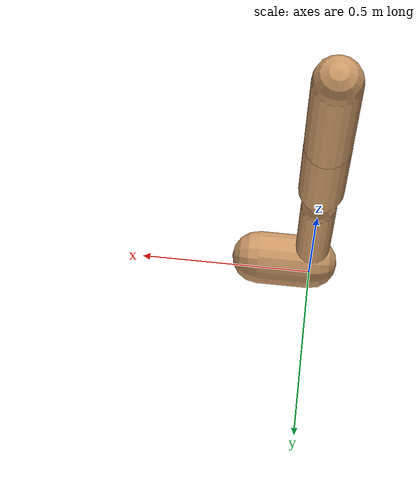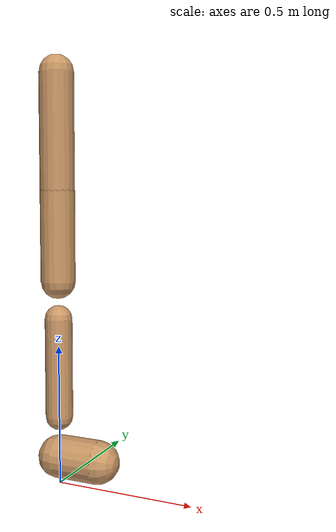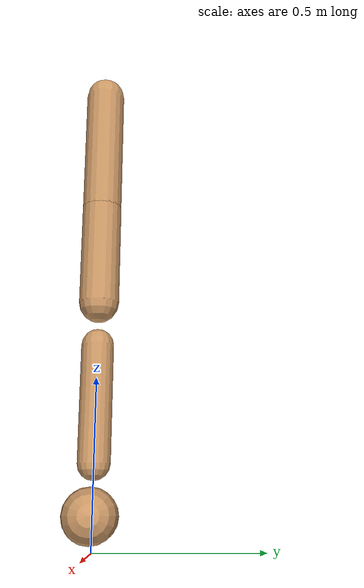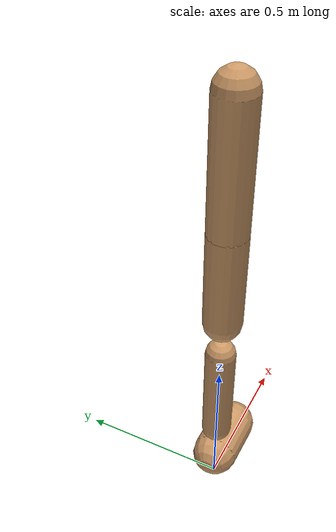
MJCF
<mujoco model="walker2d">
  <compiler angle="degree" coordinate="global" inertiafromgeom="true" />
  <default>
    <joint armature="0.01" damping=".1" limited="true" />
    <geom conaffinity="0" condim="3" contype="1" density="1000" friction="0.8 .1 .1" rgba="0.8 0.6 .4 1" />
  </default>
  <option integrator="RK4" timestep="0.002" />
  <worldbody>

    <body name="torso" pos="0 0 -0.28104497183118027">
      <joint armature="0" axis="1 0 0" damping="0" limited="false" name="ignorex" pos="0 0 0" stiffness="0" type="slide" />
      <joint armature="0" axis="0 0 1" damping="0" limited="false" name="ignorez" pos="0 0 0" ref="1.25" stiffness="0" type="slide" />
      <joint armature="0" axis="0 1 0" damping="0" limited="false" name="ignorey" pos="0 0 0" stiffness="0" type="hinge" />
      <geom fromto="0 0 1.45 0 0 1.05" name="torso_geom" size="0.06068421693517532" type="capsule" />
      <body name="thigh">
        <joint axis="0 -1 0" name="thigh_joint" pos="0 0 1.05" range="-150 0" type="hinge" />
        <geom fromto="0.0 0.0 1.05 0.0 0.0 0.7331265656042433" name="thigh_geom" size="0.061001135098848774" type="capsule" />
        <body name="leg" pos="0.0 0.0 0.1331265656042433">
          <joint axis="0 -1 0" name="leg_joint" pos="0 0 0.6" range="-150 0" type="hinge" />
          <geom fromto="0.0 0.0 0.6 0.0 0.0 0.24791840622693698" name="leg_geom" size="0.04880090807907902" type="capsule" />
          <body name="foot" pos="0.0 0.0 0.14791840622693697">
            <joint axis="0 -1 0" name="foot_joint" pos="0 0 0.1" range="-45 45" type="hinge" />
            <geom fromto="0.0 0.0 0.1 0.1540432830723377 0.0 0.1" name="foot_geom" size="0.07672902411107628" type="capsule" />
          </body>
        </body>
      </body>

      <body name="thigh_left">
        <joint axis="0 -1 0" name="thigh_left_joint" pos="0 0 1.05" range="-150 0" type="hinge" />
        <geom fromto="0.0 0.0 1.05 0.0 0.0 0.7331265656042433" name="thigh_left_geom" rgba=".7 .3 .6 1" size="0.061001135098848774" type="capsule" />
        <body name="leg_left" pos="0.0 0.0 0.1331265656042433">
          <joint axis="0 -1 0" name="leg_left_joint" pos="0 0 0.6" range="-150 0" type="hinge" />
          <geom fromto="0.0 0.0 0.6 0.0 0.0 0.24791840622693698" name="leg_left_geom" rgba=".7 .3 .6 1" size="0.04880090807907902" type="capsule" />
          <body name="foot_left" pos="0.0 0.0 0.14791840622693697">
            <joint axis="0 -1 0" name="foot_left_joint" pos="0 0 0.1" range="-45 45" type="hinge" />
            <geom fromto="0.0 0.0 0.1 0.1540432830723377 0.0 0.1" name="foot_left_geom" rgba=".7 .3 .6 1" size="0.07672902411107628" type="capsule" />
          </body>
        </body>
      </body>
    </body>
  </worldbody>
  <actuator>

    <motor ctrllimited="true" ctrlrange="-1.0 1.0" gear="100" joint="thigh_joint" />
    <motor ctrllimited="true" ctrlrange="-1.0 1.0" gear="100" joint="leg_joint" />
    <motor ctrllimited="true" ctrlrange="-1.0 1.0" gear="100" joint="foot_joint" />
    <motor ctrllimited="true" ctrlrange="-1.0 1.0" gear="100" joint="thigh_left_joint" />
    <motor ctrllimited="true" ctrlrange="-1.0 1.0" gear="100" joint="leg_left_joint" />
    <motor ctrllimited="true" ctrlrange="-1.0 1.0" gear="100" joint="foot_left_joint" />

  </actuator>
</mujoco>
